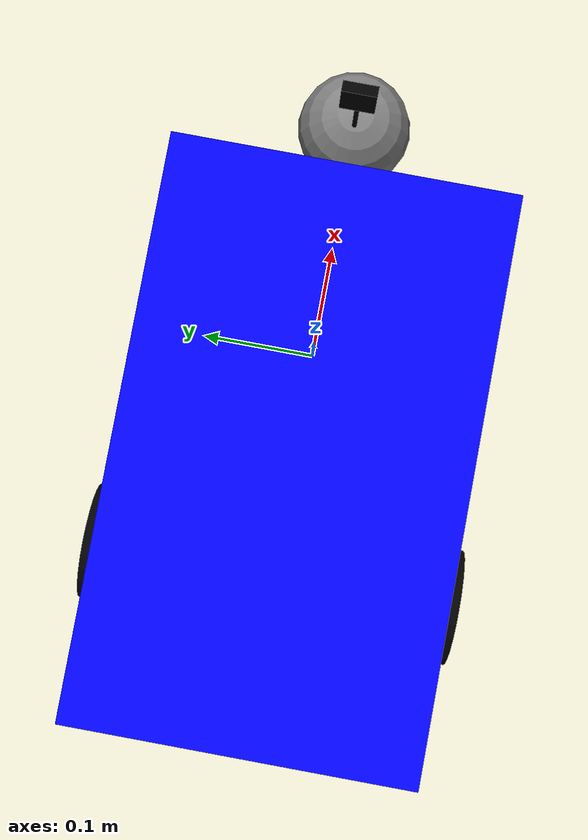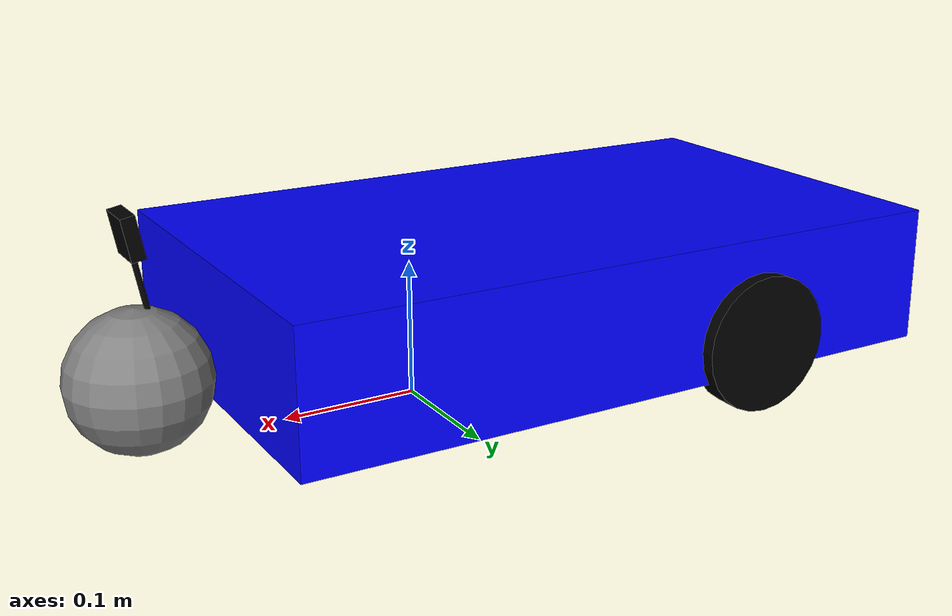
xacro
<?xml version="1.0"?>
    <robot xmlns:xacro="http://www.ros.org/wiki/xacro"  name="gen6s_diff">

        <xacro:arg name="use_ros2_control" default="true"/>
        <xacro:arg name="sim_mode" default="false"/>
        <xacro:include filename="test_diff_robot.urdf.xacro" />

    </robot>

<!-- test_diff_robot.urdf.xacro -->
<robot xmlns:xacro="http://wiki.ros.org/xacro" name="gen6s_diff">
        <xacro:arg name="sim_mode" default="false"/>
        <xacro:include filename="inertial_macros.xacro"/>
        <xacro:include filename="camera.xacro"/>
        <!-- Include camera.xacro -->

        <!-- Colors -->
        <material name="blue">
            <color rgba="0.0 0.0 1.0 1.0"/> <!-- RGBA for blue -->
        </material>
        <material name="black">
            <color rgba="0.0 0.0 0.0 1.0"/> <!-- RGBA for black -->
        </material>
        <material name="gray">
            <color rgba="0.5 0.5 0.5 1.0"/> <!-- RGBA for gray -->
        </material>

        <!-- Base Link -->

        <link name="base_link">

        </link>

        <!-- CHASSIS LINK -->

        <link name="chassis">
            <visual>
                <origin xyz="0 0 0.075" rpy="0 0 0"/>
                <geometry>
                    <box size="0.5 0.3 0.1"/>
                </geometry>
                <material name="blue"/>
            </visual>
            <collision>
                <origin xyz="0 0 0.075" rpy="0 0 0"/>
                <geometry>
                    <box size="0.5 0.3 0.1"/>
                </geometry>
            </collision>
            <inertial>
                <mass value="5.0"/>
                <inertia ixx="0.1" ixy="0.0" ixz="0.0" iyy="0.1" iyz="0.0" izz="0.1"/>
                <origin xyz="0 0 0" rpy="0 0 0"/>
            </inertial>
        </link>

        <!-- Left Wheel -->
        <link name="left_wheel">
            <visual>
                <geometry>
                    <cylinder radius="0.05" length="0.02"/>
                </geometry>
                <material name="black"/>
            </visual>
            <collision>
                <geometry>
                    <cylinder radius="0.05" length="0.02"/>
                </geometry>
            </collision>
            <inertial>
                <mass value="0.5"/>
                <inertia ixx="0.01" ixy="0.0" ixz="0.0" iyy="0.01" iyz="0.0" izz="0.01"/>
                <origin xyz="0 0 0" rpy="0 0 0"/>
            </inertial>
        </link>

        <!-- Right Wheel -->
        <link name="right_wheel">
            <visual>
                <geometry>
                    <cylinder radius="0.05" length="0.02"/>
                </geometry>
                <material name="black"/>
            </visual>
            <collision>
                <geometry>
                    <cylinder radius="0.05" length="0.02"/>
                </geometry>
            </collision>
            <inertial>
                <mass value="0.5"/>
                <inertia ixx="0.01" ixy="0.0" ixz="0.0" iyy="0.01" iyz="0.0" izz="0.01"/>
                <origin xyz="0 0 0" rpy="0 0 0"/>
            </inertial>
        </link>

        <!-- Caster Wheel -->
        <link name="caster_wheel">
            <visual>
                <geometry>
                    <sphere radius="0.05"/>
                </geometry>
                <material name="gray"/>
            </visual>
            <!-- add inertial for caster wheel -->
            <inertial>
                <mass value="0.5"/>
                <inertia ixx="0.01" ixy="0.0" ixz="0.0" iyy="0.002" iyz="0.0" izz="0.002"/>
                <origin xyz="0 0 0" rpy="0 0 0"/>
            </inertial>
        </link>

        <!-- Joints -->
        <joint name="chassis_joint" type="fixed">
            <parent link="base_link"/>
            <child link="chassis"/>
            <origin xyz="-0.1 0 0"/> <!-- Offset in x direction-->
        </joint>
        <joint name="left_wheel_joint" type="continuous">
            <parent link="base_link"/>
            <child link="left_wheel"/>
            <origin xyz="-0.2 0.15 0.05" rpy="1.57 0 0"/>
            <!-- in controls we will use this y x 2 as the separation i.e 0.3-->
            <axis xyz="0 1 0"/>
        </joint>

        <joint name="right_wheel_joint" type="continuous">
            <parent link="base_link"/>
            <child link="right_wheel"/>
            <origin xyz="-0.2 -0.15 0.05" rpy="1.57 0 0"/>
            <axis xyz="0 1 0"/>
        </joint>

        <joint name="caster_wheel_joint" type="fixed">
            <parent link="base_link"/>
            <child link="caster_wheel"/>
            <origin xyz="0.2 0 0.05"/>
            <axis xyz="0 1 0"/>
        </joint>

        <!-- Gazebo reference: -->

        <gazebo reference="caster_wheel">
            <material>Gazebo/Gray</material>
        </gazebo>

        <xacro:include filename="ros2_control.xacro"/>
    </robot>

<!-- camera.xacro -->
<robot xmlns:xacro="http://www.ros.org/wiki/xacro" >

    <joint name="camera_joint" type="fixed">
        <parent link="chassis"/>
        <child link="camera_link"/>
        <origin xyz="0.3 0 0.15" rpy="0 0.18 0"/>
    </joint>
    <!-- using the ros standard coordinates above -->

    <link name="camera_link">
        <visual>
            <geometry>
                <box size="0.010 0.03 0.03"/>
            </geometry>
            <material name="black"/>
        </visual>
        <visual>
            <origin xyz="0 0 -0.05"/>
            <geometry>
                <cylinder radius="0.002" length="0.1"/>
            </geometry>
            <material name="black"/>
        </visual>
    </link>

<!-- converting to the camera coordinates -->
    <joint name="camera_optical_joint" type="fixed">
        <parent link="camera_link"/>
        <child link="camera_link_optical"/>
        <origin xyz="0 0 0" rpy="${-pi/2} 0 ${-pi/2}"/>
    </joint>

    <link name="camera_link_optical"></link>

    <gazebo reference="camera_link">
        <material>Gazebo/Black</material>

        <sensor name="camera" type="camera">
            <pose> 0 0 0 0 0 0 </pose>
            <visualize>true</visualize>
            <update_rate>10</update_rate>
            <camera>
                <camera_info_topic>camera/camera_info</camera_info_topic>
                <horizontal_fov>1.089</horizontal_fov>
                <image>
                    <format>R8G8B8</format>
                    <width>640</width>
                    <height>480</height>
                </image>
                <clip>
                    <near>0.05</near>
                    <far>8.0</far>
                </clip>
            </camera>
            <topic>camera/image_raw</topic>
            <gz_frame_id>camera_link_optical</gz_frame_id>
        </sensor>
    </gazebo>

</robot>
